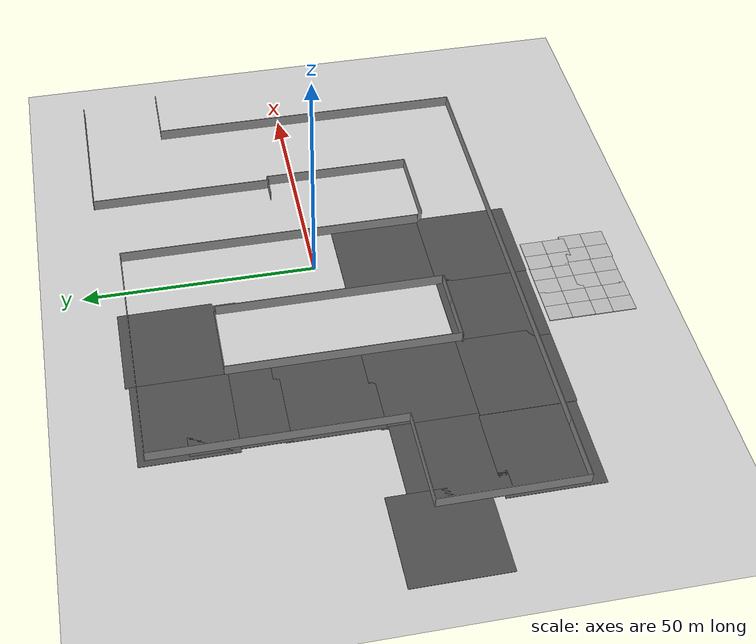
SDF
<sdf version="1.7">
 <world name="default">
  <model name="ground_plane">
   <static>1</static>
   <link name="link">
    <collision name="collision">
     <geometry><plane><normal>0 0 1</normal><size>100 100</size></plane></geometry>
     <surface><friction><ode><mu>100</mu><mu2>50</mu2></ode></friction></surface>
    </collision>
    <visual name="visual">
     <cast_shadows>0</cast_shadows>
     <geometry><plane><normal>0 0 1</normal><size>100 100</size></plane></geometry>
     <material>
      <script><uri>file://media/materials/scripts/gazebo.material</uri><name>Gazebo/Grey</name></script>
     </material>
    </visual>
   </link>
  </model>
  <model name="asphalt_plane">
   <static>1</static>
   <link name="link">
    <collision name="collision"><geometry><box><size>20 20 0.1</size></box></geometry></collision>
    <visual name="visual">
     <cast_shadows>0</cast_shadows>
     <geometry><box><size>20 20 0.1</size></box></geometry>
     <material>
      <script>
       <uri>model://asphalt_plane/materials/scripts</uri>
       <uri>model://asphalt_plane/materials/textures</uri>
       <name>vrc/asphalt</name>
      </script>
     </material>
    </visual>
   </link>
   <pose>-35.8594 -34.783 0 0 -0 0</pose>
  </model>
  <model name="asphalt_plane_1">
   <static>1</static>
   <link name="link">
    <collision name="collision"><geometry><box><size>20 20 0.1</size></box></geometry></collision>
    <visual name="visual">
     <cast_shadows>0</cast_shadows>
     <geometry><box><size>20 20 0.1</size></box></geometry>
     <material>
      <script>
       <uri>model://asphalt_plane/materials/scripts</uri>
       <uri>model://asphalt_plane/materials/textures</uri>
       <name>vrc/asphalt</name>
      </script>
     </material>
    </visual>
   </link>
   <pose>-35.8174 -14.9783 0 0 -0 0</pose>
  </model>
  <model name="asphalt_plane_1_clone">
   <static>1</static>
   <link name="link">
    <collision name="collision"><geometry><box><size>20 20 0.1</size></box></geometry></collision>
    <visual name="visual">
     <cast_shadows>0</cast_shadows>
     <geometry><box><size>20 20 0.1</size></box></geometry>
     <material>
      <script>
       <uri>model://asphalt_plane/materials/scripts</uri>
       <uri>model://asphalt_plane/materials/textures</uri>
       <name>vrc/asphalt</name>
      </script>
     </material>
    </visual>
   </link>
   <pose>-35.4994 3.67929 0 0 -0 0</pose>
  </model>
  <model name="asphalt_plane_1_clone_0">
   <static>1</static>
   <link name="link">
    <collision name="collision"><geometry><box><size>20 20 0.1</size></box></geometry></collision>
    <visual name="visual">
     <cast_shadows>0</cast_shadows>
     <geometry><box><size>20 20 0.1</size></box></geometry>
     <material>
      <script>
       <uri>model://asphalt_plane/materials/scripts</uri>
       <uri>model://asphalt_plane/materials/textures</uri>
       <name>vrc/asphalt</name>
      </script>
     </material>
    </visual>
   </link>
   <pose>-35.3091 22.4132 0 0 -0 0</pose>
  </model>
  <model name="asphalt_plane_1_clone_1">
   <static>1</static>
   <link name="link">
    <collision name="collision"><geometry><box><size>20 20 0.1</size></box></geometry></collision>
    <visual name="visual">
     <cast_shadows>0</cast_shadows>
     <geometry><box><size>20 20 0.1</size></box></geometry>
     <material>
      <script>
       <uri>model://asphalt_plane/materials/scripts</uri>
       <uri>model://asphalt_plane/materials/textures</uri>
       <name>vrc/asphalt</name>
      </script>
     </material>
    </visual>
   </link>
   <pose>-36.054 32.4043 0 0 -0 0</pose>
  </model>
  <model name="asphalt_plane_1_clone_2">
   <static>1</static>
   <link name="link">
    <collision name="collision"><geometry><box><size>20 20 0.1</size></box></geometry></collision>
    <visual name="visual">
     <cast_shadows>0</cast_shadows>
     <geometry><box><size>20 20 0.1</size></box></geometry>
     <material>
      <script>
       <uri>model://asphalt_plane/materials/scripts</uri>
       <uri>model://asphalt_plane/materials/textures</uri>
       <name>vrc/asphalt</name>
      </script>
     </material>
    </visual>
   </link>
   <pose>-16.2066 33.1694 0 0 -0 0</pose>
  </model>
  <model name="asphalt_plane_1_clone_6">
   <static>1</static>
   <link name="link">
    <collision name="collision"><geometry><box><size>20 20 0.1</size></box></geometry></collision>
    <visual name="visual">
     <cast_shadows>0</cast_shadows>
     <geometry><box><size>20 20 0.1</size></box></geometry>
     <material>
      <script>
       <uri>model://asphalt_plane/materials/scripts</uri>
       <uri>model://asphalt_plane/materials/textures</uri>
       <name>vrc/asphalt</name>
      </script>
     </material>
    </visual>
   </link>
   <pose>0.874021 -15.4979 0 0 -0 0</pose>
  </model>
  <model name="asphalt_plane_1_clone_7">
   <static>1</static>
   <link name="link">
    <collision name="collision"><geometry><box><size>20 20 0.1</size></box></geometry></collision>
    <visual name="visual">
     <cast_shadows>0</cast_shadows>
     <geometry><box><size>20 20 0.1</size></box></geometry>
     <material>
      <script>
       <uri>model://asphalt_plane/materials/scripts</uri>
       <uri>model://asphalt_plane/materials/textures</uri>
       <name>vrc/asphalt</name>
      </script>
     </material>
    </visual>
   </link>
   <pose>0.94335 -34.9347 0 0 -0 0</pose>
  </model>
  <model name="asphalt_plane_clone">
   <static>1</static>
   <link name="link">
    <collision name="collision"><geometry><box><size>20 20 0.1</size></box></geometry></collision>
    <visual name="visual">
     <cast_shadows>0</cast_shadows>
     <geometry><box><size>20 20 0.1</size></box></geometry>
     <material>
      <script>
       <uri>model://asphalt_plane/materials/scripts</uri>
       <uri>model://asphalt_plane/materials/textures</uri>
       <name>vrc/asphalt</name>
      </script>
     </material>
    </visual>
   </link>
   <pose>-55.9015 -34.5234 0 0 -0 0</pose>
  </model>
  <model name="asphalt_plane_clone_0">
   <static>1</static>
   <link name="link">
    <collision name="collision"><geometry><box><size>20 20 0.1</size></box></geometry></collision>
    <visual name="visual">
     <cast_shadows>0</cast_shadows>
     <geometry><box><size>20 20 0.1</size></box></geometry>
     <material>
      <script>
       <uri>model://asphalt_plane/materials/scripts</uri>
       <uri>model://asphalt_plane/materials/textures</uri>
       <name>vrc/asphalt</name>
      </script>
     </material>
    </visual>
   </link>
   <pose>-17.7083 -34.78 0 0 -0 0</pose>
  </model>
  <model name="asphalt_plane_1_clone_15">
   <static>1</static>
   <link name="link">
    <collision name="collision"><geometry><box><size>20 20 0.1</size></box></geometry></collision>
    <visual name="visual">
     <cast_shadows>0</cast_shadows>
     <geometry><box><size>20 20 0.1</size></box></geometry>
     <material>
      <script>
       <uri>model://asphalt_plane/materials/scripts</uri>
       <uri>model://asphalt_plane/materials/textures</uri>
       <name>vrc/asphalt</name>
      </script>
     </material>
    </visual>
   </link>
   <pose>-55.2715 -16.5354 0 0 -0 0</pose>
  </model>
  <model name="asphalt_plane_1_clone_16">
   <static>1</static>
   <link name="link">
    <collision name="collision"><geometry><box><size>20 20 0.1</size></box></geometry></collision>
    <visual name="visual">
     <cast_shadows>0</cast_shadows>
     <geometry><box><size>20 20 0.1</size></box></geometry>
     <material>
      <script>
       <uri>model://asphalt_plane/materials/scripts</uri>
       <uri>model://asphalt_plane/materials/textures</uri>
       <name>vrc/asphalt</name>
      </script>
     </material>
    </visual>
   </link>
   <pose>-71.5122 -12.2681 0 0 -0 0</pose>
  </model>
  <model name="mud_box">
   <static>1</static>
   <link name="link">
    <collision name="collision"><geometry><box><size>8 10 0.2</size></box></geometry></collision>
    <visual name="visual_1">
     <pose>-2 2.5 0 0 -0 0</pose>
     <cast_shadows>0</cast_shadows>
     <geometry><box><size>4 5 0.2</size></box></geometry>
     <material>
      <script>
       <uri>model://mud_box/materials/scripts</uri>
       <uri>model://mud_box/materials/textures</uri>
       <name>vrc/mud</name>
      </script>
     </material>
    </visual>
    <visual name="visual_2">
     <pose>2 2.5 0 0 -0 0</pose>
     <cast_shadows>0</cast_shadows>
     <geometry><box><size>4 5 0.2</size></box></geometry>
     <material>
      <script>
       <uri>model://mud_box/materials/scripts</uri>
       <uri>model://mud_box/materials/textures</uri>
       <name>vrc/mud</name>
      </script>
     </material>
    </visual>
    <visual name="visual_3">
     <pose>2 -2.5 0 0 -0 0</pose>
     <cast_shadows>0</cast_shadows>
     <geometry><box><size>4 5 0.2</size></box></geometry>
     <material>
      <script>
       <uri>model://mud_box/materials/scripts</uri>
       <uri>model://mud_box/materials/textures</uri>
       <name>vrc/mud</name>
      </script>
     </material>
    </visual>
    <visual name="visual_4">
     <pose>-2 -2.5 0 0 -0 0</pose>
     <cast_shadows>0</cast_shadows>
     <geometry><box><size>4 5 0.2</size></box></geometry>
     <material>
      <script>
       <uri>model://mud_box/materials/scripts</uri>
       <uri>model://mud_box/materials/textures</uri>
       <name>vrc/mud</name>
      </script>
     </material>
    </visual>
   </link>
   <pose>-20.1714 -50.6717 0 0 -0 0</pose>
  </model>
  <model name="mud_box_clone">
   <static>1</static>
   <link name="link">
    <collision name="collision"><geometry><box><size>8 10 0.2</size></box></geometry></collision>
    <visual name="visual_1">
     <pose>-2 2.5 0 0 -0 0</pose>
     <cast_shadows>0</cast_shadows>
     <geometry><box><size>4 5 0.2</size></box></geometry>
     <material>
      <script>
       <uri>model://mud_box/materials/scripts</uri>
       <uri>model://mud_box/materials/textures</uri>
       <name>vrc/mud</name>
      </script>
     </material>
    </visual>
    <visual name="visual_2">
     <pose>2 2.5 0 0 -0 0</pose>
     <cast_shadows>0</cast_shadows>
     <geometry><box><size>4 5 0.2</size></box></geometry>
     <material>
      <script>
       <uri>model://mud_box/materials/scripts</uri>
       <uri>model://mud_box/materials/textures</uri>
       <name>vrc/mud</name>
      </script>
     </material>
    </visual>
    <visual name="visual_3">
     <pose>2 -2.5 0 0 -0 0</pose>
     <cast_shadows>0</cast_shadows>
     <geometry><box><size>4 5 0.2</size></box></geometry>
     <material>
      <script>
       <uri>model://mud_box/materials/scripts</uri>
       <uri>model://mud_box/materials/textures</uri>
       <name>vrc/mud</name>
      </script>
     </material>
    </visual>
    <visual name="visual_4">
     <pose>-2 -2.5 0 0 -0 0</pose>
     <cast_shadows>0</cast_shadows>
     <geometry><box><size>4 5 0.2</size></box></geometry>
     <material>
      <script>
       <uri>model://mud_box/materials/scripts</uri>
       <uri>model://mud_box/materials/textures</uri>
       <name>vrc/mud</name>
      </script>
     </material>
    </visual>
   </link>
   <pose>-12.4644 -50.6601 0 0 -0 0</pose>
  </model>
  <model name="mud_box_clone_0">
   <static>1</static>
   <link name="link">
    <collision name="collision"><geometry><box><size>8 10 0.2</size></box></geometry></collision>
    <visual name="visual_1">
     <pose>-2 2.5 0 0 -0 0</pose>
     <cast_shadows>0</cast_shadows>
     <geometry><box><size>4 5 0.2</size></box></geometry>
     <material>
      <script>
       <uri>model://mud_box/materials/scripts</uri>
       <uri>model://mud_box/materials/textures</uri>
       <name>vrc/mud</name>
      </script>
     </material>
    </visual>
    <visual name="visual_2">
     <pose>2 2.5 0 0 -0 0</pose>
     <cast_shadows>0</cast_shadows>
     <geometry><box><size>4 5 0.2</size></box></geometry>
     <material>
      <script>
       <uri>model://mud_box/materials/scripts</uri>
       <uri>model://mud_box/materials/textures</uri>
       <name>vrc/mud</name>
      </script>
     </material>
    </visual>
    <visual name="visual_3">
     <pose>2 -2.5 0 0 -0 0</pose>
     <cast_shadows>0</cast_shadows>
     <geometry><box><size>4 5 0.2</size></box></geometry>
     <material>
      <script>
       <uri>model://mud_box/materials/scripts</uri>
       <uri>model://mud_box/materials/textures</uri>
       <name>vrc/mud</name>
      </script>
     </material>
    </visual>
    <visual name="visual_4">
     <pose>-2 -2.5 0 0 -0 0</pose>
     <cast_shadows>0</cast_shadows>
     <geometry><box><size>4 5 0.2</size></box></geometry>
     <material>
      <script>
       <uri>model://mud_box/materials/scripts</uri>
       <uri>model://mud_box/materials/textures</uri>
       <name>vrc/mud</name>
      </script>
     </material>
    </visual>
   </link>
   <pose>-5.11411 -50.7306 0 0 -0 0</pose>
  </model>
  <model name="mud_box_clone_8">
   <static>1</static>
   <link name="link">
    <collision name="collision"><geometry><box><size>8 10 0.2</size></box></geometry></collision>
    <visual name="visual_1">
     <pose>-2 2.5 0 0 -0 0</pose>
     <cast_shadows>0</cast_shadows>
     <geometry><box><size>4 5 0.2</size></box></geometry>
     <material>
      <script>
       <uri>model://mud_box/materials/scripts</uri>
       <uri>model://mud_box/materials/textures</uri>
       <name>vrc/mud</name>
      </script>
     </material>
    </visual>
    <visual name="visual_2">
     <pose>2 2.5 0 0 -0 0</pose>
     <cast_shadows>0</cast_shadows>
     <geometry><box><size>4 5 0.2</size></box></geometry>
     <material>
      <script>
       <uri>model://mud_box/materials/scripts</uri>
       <uri>model://mud_box/materials/textures</uri>
       <name>vrc/mud</name>
      </script>
     </material>
    </visual>
    <visual name="visual_3">
     <pose>2 -2.5 0 0 -0 0</pose>
     <cast_shadows>0</cast_shadows>
     <geometry><box><size>4 5 0.2</size></box></geometry>
     <material>
      <script>
       <uri>model://mud_box/materials/scripts</uri>
       <uri>model://mud_box/materials/textures</uri>
       <name>vrc/mud</name>
      </script>
     </material>
    </visual>
    <visual name="visual_4">
     <pose>-2 -2.5 0 0 -0 0</pose>
     <cast_shadows>0</cast_shadows>
     <geometry><box><size>4 5 0.2</size></box></geometry>
     <material>
      <script>
       <uri>model://mud_box/materials/scripts</uri>
       <uri>model://mud_box/materials/textures</uri>
       <name>vrc/mud</name>
      </script>
     </material>
    </visual>
   </link>
   <pose>-20.2041 -59.5861 0 0 -0 0</pose>
  </model>
  <model name="mud_box_clone_9">
   <static>1</static>
   <link name="link">
    <collision name="collision"><geometry><box><size>8 10 0.2</size></box></geometry></collision>
    <visual name="visual_1">
     <pose>-2 2.5 0 0 -0 0</pose>
     <cast_shadows>0</cast_shadows>
     <geometry><box><size>4 5 0.2</size></box></geometry>
     <material>
      <script>
       <uri>model://mud_box/materials/scripts</uri>
       <uri>model://mud_box/materials/textures</uri>
       <name>vrc/mud</name>
      </script>
     </material>
    </visual>
    <visual name="visual_2">
     <pose>2 2.5 0 0 -0 0</pose>
     <cast_shadows>0</cast_shadows>
     <geometry><box><size>4 5 0.2</size></box></geometry>
     <material>
      <script>
       <uri>model://mud_box/materials/scripts</uri>
       <uri>model://mud_box/materials/textures</uri>
       <name>vrc/mud</name>
      </script>
     </material>
    </visual>
    <visual name="visual_3">
     <pose>2 -2.5 0 0 -0 0</pose>
     <cast_shadows>0</cast_shadows>
     <geometry><box><size>4 5 0.2</size></box></geometry>
     <material>
      <script>
       <uri>model://mud_box/materials/scripts</uri>
       <uri>model://mud_box/materials/textures</uri>
       <name>vrc/mud</name>
      </script>
     </material>
    </visual>
    <visual name="visual_4">
     <pose>-2 -2.5 0 0 -0 0</pose>
     <cast_shadows>0</cast_shadows>
     <geometry><box><size>4 5 0.2</size></box></geometry>
     <material>
      <script>
       <uri>model://mud_box/materials/scripts</uri>
       <uri>model://mud_box/materials/textures</uri>
       <name>vrc/mud</name>
      </script>
     </material>
    </visual>
   </link>
   <pose>-12.4186 -59.4615 0 0 -0 0</pose>
  </model>
  <model name="mud_box_clone_10">
   <static>1</static>
   <link name="link">
    <collision name="collision"><geometry><box><size>8 10 0.2</size></box></geometry></collision>
    <visual name="visual_1">
     <pose>-2 2.5 0 0 -0 0</pose>
     <cast_shadows>0</cast_shadows>
     <geometry><box><size>4 5 0.2</size></box></geometry>
     <material>
      <script>
       <uri>model://mud_box/materials/scripts</uri>
       <uri>model://mud_box/materials/textures</uri>
       <name>vrc/mud</name>
      </script>
     </material>
    </visual>
    <visual name="visual_2">
     <pose>2 2.5 0 0 -0 0</pose>
     <cast_shadows>0</cast_shadows>
     <geometry><box><size>4 5 0.2</size></box></geometry>
     <material>
      <script>
       <uri>model://mud_box/materials/scripts</uri>
       <uri>model://mud_box/materials/textures</uri>
       <name>vrc/mud</name>
      </script>
     </material>
    </visual>
    <visual name="visual_3">
     <pose>2 -2.5 0 0 -0 0</pose>
     <cast_shadows>0</cast_shadows>
     <geometry><box><size>4 5 0.2</size></box></geometry>
     <material>
      <script>
       <uri>model://mud_box/materials/scripts</uri>
       <uri>model://mud_box/materials/textures</uri>
       <name>vrc/mud</name>
      </script>
     </material>
    </visual>
    <visual name="visual_4">
     <pose>-2 -2.5 0 0 -0 0</pose>
     <cast_shadows>0</cast_shadows>
     <geometry><box><size>4 5 0.2</size></box></geometry>
     <material>
      <script>
       <uri>model://mud_box/materials/scripts</uri>
       <uri>model://mud_box/materials/textures</uri>
       <name>vrc/mud</name>
      </script>
     </material>
    </visual>
   </link>
   <pose>-4.41122 -59.6758 0 0 -0 0</pose>
  </model>
  <model name="map_world">
   <pose>-1.28595 2.05707 0 0 -0 0</pose>
   <link name="Wall_0">
    <collision name="Wall_0_Collision">
     <geometry><box><size>48.75 0.15 2.5</size></box></geometry>
     <pose>0 0 1.25 0 -0 0</pose>
    </collision>
    <visual name="Wall_0_Visual">
     <pose>0 0 1.25 0 -0 0</pose>
     <geometry><box><size>48.75 0.15 2.5</size></box></geometry>
     <material>
      <script><uri>file://media/materials/scripts/gazebo.material</uri><name>Gazebo/Grey</name></script>
      <ambient>1 1 1 1</ambient>
     </material>
     <meta><layer>0</layer></meta>
    </visual>
    <pose>-8.09387 -3.72318 0 0 -0 1.5708</pose>
   </link>
   <link name="Wall_2">
    <collision name="Wall_2_Collision">
     <geometry><box><size>12 0.15 2.5</size></box></geometry>
     <pose>0 0 1.25 0 -0 0</pose>
    </collision>
    <visual name="Wall_2_Visual">
     <pose>0 0 1.25 0 -0 0</pose>
     <geometry><box><size>12 0.15 2.5</size></box></geometry>
     <material>
      <script><uri>file://media/materials/scripts/gazebo.material</uri><name>Gazebo/Grey</name></script>
      <ambient>1 1 1 1</ambient>
     </material>
     <meta><layer>0</layer></meta>
    </visual>
    <pose>-19.3385 -28.3605 0 0 -0 3.14159</pose>
   </link>
   <link name="Wall_21">
    <collision name="Wall_21_Collision">
     <geometry><box><size>5.5 0.15 2.5</size></box></geometry>
     <pose>0 0 1.25 0 -0 0</pose>
    </collision>
    <visual name="Wall_21_Visual">
     <pose>0 0 1.25 0 -0 0</pose>
     <geometry><box><size>5.5 0.15 2.5</size></box></geometry>
     <material>
      <script><uri>file://media/materials/scripts/gazebo.material</uri><name>Gazebo/Grey</name></script>
      <ambient>1 1 1 1</ambient>
     </material>
     <meta><layer>0</layer></meta>
    </visual>
    <pose>27.3564 3.8157 0 0 -0 0</pose>
   </link>
   <link name="Wall_22">
    <collision name="Wall_22_Collision">
     <geometry><box><size>32.25 0.15 2.5</size></box></geometry>
     <pose>0 0 1.25 0 -0 0</pose>
    </collision>
    <visual name="Wall_22_Visual">
     <pose>0 0 1.25 0 -0 0</pose>
     <geometry><box><size>32.25 0.15 2.5</size></box></geometry>
     <material>
      <script><uri>file://media/materials/scripts/gazebo.material</uri><name>Gazebo/Grey</name></script>
      <ambient>1 1 1 1</ambient>
     </material>
     <meta><layer>0</layer></meta>
    </visual>
    <pose>30.0314 -12.2343 0 0 -0 -1.5708</pose>
   </link>
   <link name="Wall_23">
    <collision name="Wall_23_Collision">
     <geometry><box><size>17.75 0.15 2.5</size></box></geometry>
     <pose>0 0 1.25 0 -0 0</pose>
    </collision>
    <visual name="Wall_23_Visual">
     <pose>0 0 1.25 0 -0 0</pose>
     <geometry><box><size>17.75 0.15 2.5</size></box></geometry>
     <material>
      <script><uri>file://media/materials/scripts/gazebo.material</uri><name>Gazebo/Grey</name></script>
      <ambient>1 1 1 1</ambient>
     </material>
     <meta><layer>0</layer></meta>
    </visual>
    <pose>21.2314 -28.2843 0 0 -0 3.14159</pose>
   </link>
   <link name="Wall_24">
    <collision name="Wall_24_Collision">
     <geometry><box><size>1.75 0.15 2.5</size></box></geometry>
     <pose>0 0 1.25 0 -0 0</pose>
    </collision>
    <visual name="Wall_24_Visual">
     <pose>0 0 1.25 0 -0 0</pose>
     <geometry><box><size>1.75 0.15 2.5</size></box></geometry>
     <material>
      <script><uri>file://media/materials/scripts/gazebo.material</uri><name>Gazebo/Grey</name></script>
      <ambient>1 1 1 1</ambient>
     </material>
     <meta><layer>0</layer></meta>
    </visual>
    <pose>11.8657 -27.7186 0 0 -0 2.35619</pose>
   </link>
   <link name="Wall_25">
    <collision name="Wall_25_Collision">
     <geometry><box><size>66.25 0.15 2.5</size></box></geometry>
     <pose>0 0 1.25 0 -0 0</pose>
    </collision>
    <visual name="Wall_25_Visual">
     <pose>0 0 1.25 0 -0 0</pose>
     <geometry><box><size>66.25 0.15 2.5</size></box></geometry>
     <material>
      <script><uri>file://media/materials/scripts/gazebo.material</uri><name>Gazebo/Grey</name></script>
      <ambient>1 1 1 1</ambient>
     </material>
     <meta><layer>0</layer></meta>
    </visual>
    <pose>11.3 5.89707 0 0 -0 1.5708</pose>
   </link>
   <link name="Wall_26">
    <collision name="Wall_26_Collision">
     <geometry><box><size>54.75 0.15 2.5</size></box></geometry>
     <pose>0 0 1.25 0 -0 0</pose>
    </collision>
    <visual name="Wall_26_Visual">
     <pose>0 0 1.25 0 -0 0</pose>
     <geometry><box><size>54.75 0.15 2.5</size></box></geometry>
     <material>
      <script><uri>file://media/materials/scripts/gazebo.material</uri><name>Gazebo/Grey</name></script>
      <ambient>1 1 1 1</ambient>
     </material>
     <meta><layer>0</layer></meta>
    </visual>
    <pose>-16 38.9471 0 0 -0 3.14159</pose>
   </link>
   <link name="Wall_27">
    <collision name="Wall_27_Collision">
     <geometry><box><size>52.25 0.15 2.5</size></box></geometry>
     <pose>0 0 1.25 0 -0 0</pose>
    </collision>
    <visual name="Wall_27_Visual">
     <pose>0 0 1.25 0 -0 0</pose>
     <geometry><box><size>52.25 0.15 2.5</size></box></geometry>
     <material>
      <script><uri>file://media/materials/scripts/gazebo.material</uri><name>Gazebo/Grey</name></script>
      <ambient>1 1 1 1</ambient>
     </material>
     <meta><layer>0</layer></meta>
    </visual>
    <pose>-43.3 12.8971 0 0 -0 -1.5708</pose>
   </link>
   <link name="Wall_28">
    <collision name="Wall_28_Collision">
     <geometry><box><size>20.75 0.15 2.5</size></box></geometry>
     <pose>0 0 1.25 0 -0 0</pose>
    </collision>
    <visual name="Wall_28_Visual">
     <pose>0 0 1.25 0 -0 0</pose>
     <geometry><box><size>20.75 0.15 2.5</size></box></geometry>
     <material>
      <script><uri>file://media/materials/scripts/gazebo.material</uri><name>Gazebo/Grey</name></script>
      <ambient>1 1 1 1</ambient>
     </material>
     <meta><layer>0</layer></meta>
    </visual>
    <pose>-53.6 -13.1529 0 0 -0 3.14159</pose>
   </link>
   <link name="Wall_29">
    <collision name="Wall_29_Collision">
     <geometry><box><size>30.5 0.15 2.5</size></box></geometry>
     <pose>0 0 1.25 0 -0 0</pose>
    </collision>
    <visual name="Wall_29_Visual">
     <pose>0 0 1.25 0 -0 0</pose>
     <geometry><box><size>30.5 0.15 2.5</size></box></geometry>
     <material>
      <script><uri>file://media/materials/scripts/gazebo.material</uri><name>Gazebo/Grey</name></script>
      <ambient>1 1 1 1</ambient>
     </material>
     <meta><layer>0</layer></meta>
    </visual>
    <pose>-63.9 -28.3279 0 0 -0 -1.5708</pose>
   </link>
   <link name="Wall_3">
    <collision name="Wall_3_Collision">
     <geometry><box><size>17.25 0.15 2.5</size></box></geometry>
     <pose>0 0 1.25 0 -0 0</pose>
    </collision>
    <visual name="Wall_3_Visual">
     <pose>0 0 1.25 0 -0 0</pose>
     <geometry><box><size>17.25 0.15 2.5</size></box></geometry>
     <material>
      <script><uri>file://media/materials/scripts/gazebo.material</uri><name>Gazebo/Grey</name></script>
      <ambient>1 1 1 1</ambient>
     </material>
     <meta><layer>0</layer></meta>
    </visual>
    <pose>-16.7135 -28.3605 0 0 -0 0</pose>
   </link>
   <link name="Wall_30">
    <collision name="Wall_30_Collision">
     <geometry><box><size>13.75 0.15 2.5</size></box></geometry>
     <pose>0 0 1.25 0 -0 0</pose>
    </collision>
    <visual name="Wall_30_Visual">
     <pose>0 0 1.25 0 -0 0</pose>
     <geometry><box><size>13.75 0.15 2.5</size></box></geometry>
     <material>
      <script><uri>file://media/materials/scripts/gazebo.material</uri><name>Gazebo/Grey</name></script>
      <ambient>1 1 1 1</ambient>
     </material>
     <meta><layer>0</layer></meta>
    </visual>
    <pose>-57.1 -43.5029 0 0 -0 0</pose>
   </link>
   <link name="Wall_31">
    <collision name="Wall_31_Collision">
     <geometry><box><size>101 0.15 2.5</size></box></geometry>
     <pose>0 0 1.25 0 -0 0</pose>
    </collision>
    <visual name="Wall_31_Visual">
     <pose>0 0 1.25 0 -0 0</pose>
     <geometry><box><size>101 0.15 2.5</size></box></geometry>
     <material>
      <script><uri>file://media/materials/scripts/gazebo.material</uri><name>Gazebo/Grey</name></script>
      <ambient>1 1 1 1</ambient>
     </material>
     <meta><layer>0</layer></meta>
    </visual>
    <pose>0.125003 -43.5029 0 0 -0 0</pose>
   </link>
   <link name="Wall_32">
    <collision name="Wall_32_Collision">
     <geometry><box><size>69.75 0.15 2.5</size></box></geometry>
     <pose>0 0 1.25 0 -0 0</pose>
    </collision>
    <visual name="Wall_32_Visual">
     <pose>0 0 1.25 0 -0 0</pose>
     <geometry><box><size>69.75 0.15 2.5</size></box></geometry>
     <material>
      <script><uri>file://media/materials/scripts/gazebo.material</uri><name>Gazebo/Grey</name></script>
      <ambient>1 1 1 1</ambient>
     </material>
     <meta><layer>0</layer></meta>
    </visual>
    <pose>50.55 -8.70293 0 0 -0 1.5708</pose>
   </link>
   <link name="Wall_33">
    <collision name="Wall_33_Collision">
     <geometry><box><size>13.5 0.15 2.5</size></box></geometry>
     <pose>0 0 1.25 0 -0 0</pose>
    </collision>
    <visual name="Wall_33_Visual">
     <pose>0 0 1.25 0 -0 0</pose>
     <geometry><box><size>13.5 0.15 2.5</size></box></geometry>
     <material>
      <script><uri>file://media/materials/scripts/gazebo.material</uri><name>Gazebo/Grey</name></script>
      <ambient>1 1 1 1</ambient>
     </material>
     <meta><layer>0</layer></meta>
    </visual>
    <pose>57.225 26.0971 0 0 -0 0</pose>
   </link>
   <link name="Wall_36">
    <collision name="Wall_36_Collision">
     <geometry><box><size>33.25 0.15 2.5</size></box></geometry>
     <pose>0 0 1.25 0 -0 0</pose>
    </collision>
    <visual name="Wall_36_Visual">
     <pose>0 0 1.25 0 -0 0</pose>
     <geometry><box><size>33.25 0.15 2.5</size></box></geometry>
     <material>
      <script><uri>file://media/materials/scripts/gazebo.material</uri><name>Gazebo/Grey</name></script>
      <ambient>1 1 1 1</ambient>
     </material>
     <meta><layer>0</layer></meta>
    </visual>
    <pose>45.4389 43.5029 0 0 -0 3.14159</pose>
   </link>
   <link name="Wall_37">
    <collision name="Wall_37_Collision">
     <geometry><box><size>40 0.15 2.5</size></box></geometry>
     <pose>0 0 1.25 0 -0 0</pose>
    </collision>
    <visual name="Wall_37_Visual">
     <pose>0 0 1.25 0 -0 0</pose>
     <geometry><box><size>40 0.15 2.5</size></box></geometry>
     <material>
      <script><uri>file://media/materials/scripts/gazebo.material</uri><name>Gazebo/Grey</name></script>
      <ambient>1 1 1 1</ambient>
     </material>
     <meta><layer>0</layer></meta>
    </visual>
    <pose>28.8889 23.5779 0 0 -0 -1.5708</pose>
   </link>
   <link name="Wall_4">
    <collision name="Wall_4_Collision">
     <geometry><box><size>16.75 0.15 2.5</size></box></geometry>
     <pose>0 0 1.25 0 -0 0</pose>
    </collision>
    <visual name="Wall_4_Visual">
     <pose>0 0 1.25 0 -0 0</pose>
     <geometry><box><size>16.75 0.15 2.5</size></box></geometry>
     <material>
      <script><uri>file://media/materials/scripts/gazebo.material</uri><name>Gazebo/Grey</name></script>
      <ambient>1 1 1 1</ambient>
     </material>
     <meta><layer>0</layer></meta>
    </visual>
    <pose>-16.4635 -28.3605 0 0 -0 3.14159</pose>
   </link>
   <link name="Wall_5">
    <collision name="Wall_5_Collision">
     <geometry><box><size>49.5 0.15 2.5</size></box></geometry>
     <pose>0 0 1.25 0 -0 0</pose>
    </collision>
    <visual name="Wall_5_Visual">
     <pose>0 0 1.25 0 -0 0</pose>
     <geometry><box><size>49.5 0.15 2.5</size></box></geometry>
     <material>
      <script><uri>file://media/materials/scripts/gazebo.material</uri><name>Gazebo/Grey</name></script>
      <ambient>1 1 1 1</ambient>
     </material>
     <meta><layer>0</layer></meta>
    </visual>
    <pose>-24.7635 -3.68548 0 0 -0 1.5708</pose>
   </link>
   <link name="Wall_6">
    <collision name="Wall_6_Collision">
     <geometry><box><size>17 0.15 2.5</size></box></geometry>
     <pose>0 0 1.25 0 -0 0</pose>
    </collision>
    <visual name="Wall_6_Visual">
     <pose>0 0 1.25 0 -0 0</pose>
     <geometry><box><size>17 0.15 2.5</size></box></geometry>
     <material>
      <script><uri>file://media/materials/scripts/gazebo.material</uri><name>Gazebo/Grey</name></script>
      <ambient>1 1 1 1</ambient>
     </material>
     <meta><layer>0</layer></meta>
    </visual>
    <pose>-16.3385 20.9895 0 0 -0 0</pose>
   </link>
   <link name="Wall_7">
    <collision name="Wall_7_Collision">
     <geometry><box><size>4.75 0.15 2.5</size></box></geometry>
     <pose>0 0 1.25 0 -0 0</pose>
    </collision>
    <visual name="Wall_7_Visual">
     <pose>0 0 1.25 0 -0 0</pose>
     <geometry><box><size>4.75 0.15 2.5</size></box></geometry>
     <material>
      <script><uri>file://media/materials/scripts/gazebo.material</uri><name>Gazebo/Grey</name></script>
      <ambient>1 1 1 1</ambient>
     </material>
     <meta><layer>0</layer></meta>
    </visual>
    <pose>-7.9135 18.6895 0 0 -0 -1.5708</pose>
   </link>
   <static>1</static>
  </model>
 </world>
</sdf>
